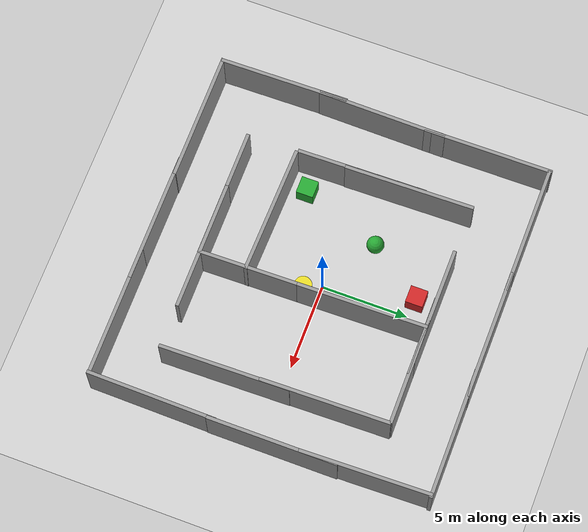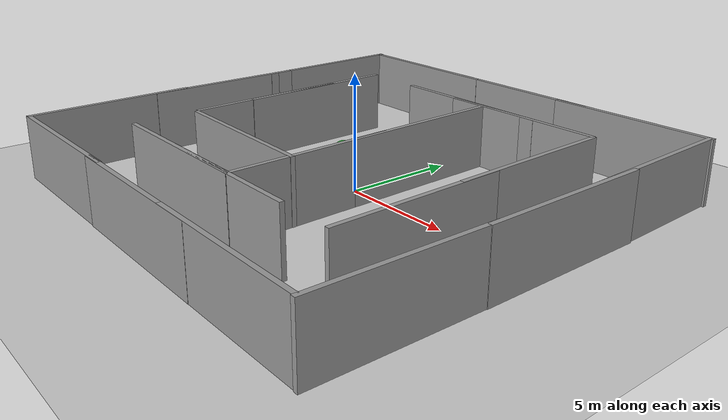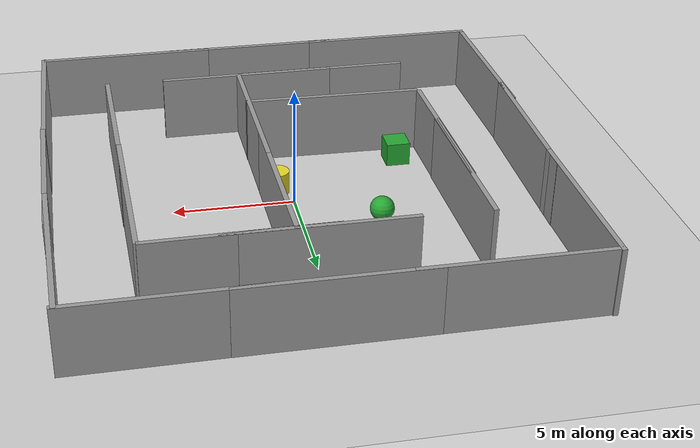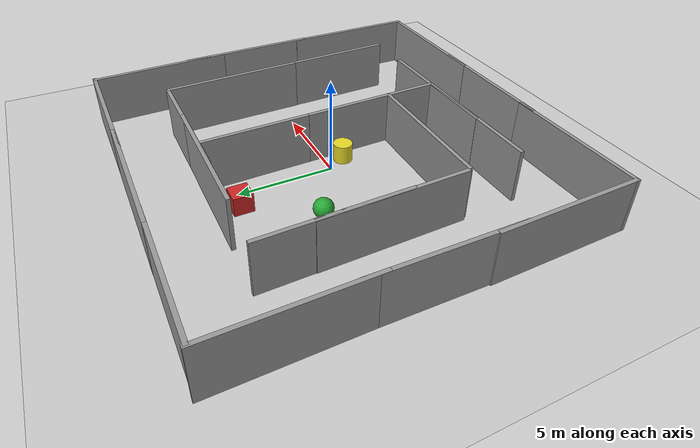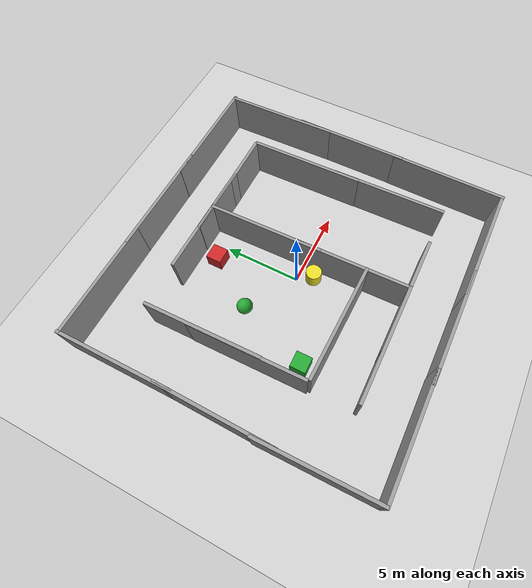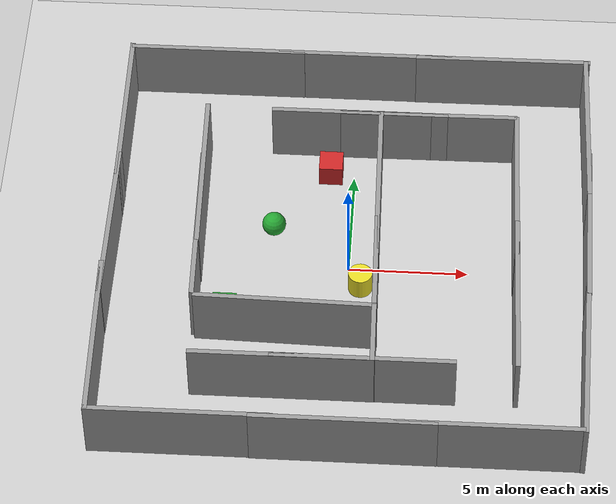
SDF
<sdf version="1.6">
 <world name="default">
  <model name="ground_plane">
   <static>1</static>
   <link name="link">
    <collision name="collision">
     <geometry><plane><normal>0 0 1</normal><size>100 100</size></plane></geometry>
     <surface><friction><ode><mu>100</mu><mu2>50</mu2></ode></friction></surface>
    </collision>
    <visual name="visual">
     <cast_shadows>0</cast_shadows>
     <geometry><plane><normal>0 0 1</normal><size>100 100</size></plane></geometry>
     <material>
      <script><uri>file://media/materials/scripts/gazebo.material</uri><name>Gazebo/Grey</name></script>
     </material>
    </visual>
    <velocity_decay><linear>0</linear><angular>0</angular></velocity_decay>
   </link>
  </model>
  <model name="grey_wall">
   <static>1</static>
   <link name="link">
    <pose>0 0 1.4 0 -0 0</pose>
    <collision name="collision"><geometry><box><size>7.5 0.2 2.8</size></box></geometry></collision>
    <visual name="visual">
     <cast_shadows>0</cast_shadows>
     <geometry><box><size>7.5 0.2 2.8</size></box></geometry>
     <material>
      <script>
       <uri>model://grey_wall/materials/scripts</uri>
       <uri>model://grey_wall/materials/textures</uri>
       <name>vrc/grey_wall</name>
      </script>
     </material>
    </visual>
    <velocity_decay><linear>0</linear><angular>0</angular></velocity_decay>
   </link>
   <pose>-6.15914 9.7448 0 0 -0 0</pose>
  </model>
  <model name="grey_wall_0">
   <static>1</static>
   <link name="link">
    <pose>0 0 1.4 0 -0 0</pose>
    <collision name="collision"><geometry><box><size>7.5 0.2 2.8</size></box></geometry></collision>
    <visual name="visual">
     <cast_shadows>0</cast_shadows>
     <geometry><box><size>7.5 0.2 2.8</size></box></geometry>
     <material>
      <script>
       <uri>model://grey_wall/materials/scripts</uri>
       <uri>model://grey_wall/materials/textures</uri>
       <name>vrc/grey_wall</name>
      </script>
     </material>
    </visual>
    <velocity_decay><linear>0</linear><angular>0</angular></velocity_decay>
   </link>
   <pose>-6.21165 -9.703 0 0 -0 0</pose>
  </model>
  <model name="grey_wall_1">
   <static>1</static>
   <link name="link">
    <pose>0 0 1.4 0 -0 0</pose>
    <collision name="collision"><geometry><box><size>7.5 0.2 2.8</size></box></geometry></collision>
    <visual name="visual">
     <cast_shadows>0</cast_shadows>
     <geometry><box><size>7.5 0.2 2.8</size></box></geometry>
     <material>
      <script>
       <uri>model://grey_wall/materials/scripts</uri>
       <uri>model://grey_wall/materials/textures</uri>
       <name>vrc/grey_wall</name>
      </script>
     </material>
    </visual>
    <velocity_decay><linear>0</linear><angular>0</angular></velocity_decay>
   </link>
   <pose>-9.91604 -6.01841 0 0 0 -1.55564</pose>
  </model>
  <model name="grey_wall_2">
   <static>1</static>
   <link name="link">
    <pose>0 0 1.4 0 -0 0</pose>
    <collision name="collision"><geometry><box><size>7.5 0.2 2.8</size></box></geometry></collision>
    <visual name="visual">
     <cast_shadows>0</cast_shadows>
     <geometry><box><size>7.5 0.2 2.8</size></box></geometry>
     <material>
      <script>
       <uri>model://grey_wall/materials/scripts</uri>
       <uri>model://grey_wall/materials/textures</uri>
       <name>vrc/grey_wall</name>
      </script>
     </material>
    </visual>
    <velocity_decay><linear>0</linear><angular>0</angular></velocity_decay>
   </link>
   <pose>-2.36047 -6.71034 0 0 -0 0</pose>
  </model>
  <model name="grey_wall_3">
   <static>1</static>
   <link name="link">
    <pose>0 0 1.4 0 -0 0</pose>
    <collision name="collision"><geometry><box><size>7.5 0.2 2.8</size></box></geometry></collision>
    <visual name="visual">
     <cast_shadows>0</cast_shadows>
     <geometry><box><size>7.5 0.2 2.8</size></box></geometry>
     <material>
      <script>
       <uri>model://grey_wall/materials/scripts</uri>
       <uri>model://grey_wall/materials/textures</uri>
       <name>vrc/grey_wall</name>
      </script>
     </material>
    </visual>
    <velocity_decay><linear>0</linear><angular>0</angular></velocity_decay>
   </link>
   <pose>9.84269 6.09226 0.00212 0 0 -1.54587</pose>
  </model>
  <model name="grey_wall_4">
   <static>1</static>
   <link name="link">
    <pose>0 0 1.4 0 -0 0</pose>
    <collision name="collision"><geometry><box><size>7.5 0.2 2.8</size></box></geometry></collision>
    <visual name="visual">
     <cast_shadows>0</cast_shadows>
     <geometry><box><size>7.5 0.2 2.8</size></box></geometry>
     <material>
      <script>
       <uri>model://grey_wall/materials/scripts</uri>
       <uri>model://grey_wall/materials/textures</uri>
       <name>vrc/grey_wall</name>
      </script>
     </material>
    </visual>
    <velocity_decay><linear>0</linear><angular>0</angular></velocity_decay>
   </link>
   <pose>6.04797 -9.73342 0 0 -0 0</pose>
  </model>
  <model name="grey_wall_5">
   <static>1</static>
   <link name="link">
    <pose>0 0 1.4 0 -0 0</pose>
    <collision name="collision"><geometry><box><size>7.5 0.2 2.8</size></box></geometry></collision>
    <visual name="visual">
     <cast_shadows>0</cast_shadows>
     <geometry><box><size>7.5 0.2 2.8</size></box></geometry>
     <material>
      <script>
       <uri>model://grey_wall/materials/scripts</uri>
       <uri>model://grey_wall/materials/textures</uri>
       <name>vrc/grey_wall</name>
      </script>
     </material>
    </visual>
    <velocity_decay><linear>0</linear><angular>0</angular></velocity_decay>
   </link>
   <pose>-6.24263 -0.010871 0 0 -0 1.58991</pose>
  </model>
  <model name="grey_wall_6">
   <static>1</static>
   <link name="link">
    <pose>0 0 1.4 0 -0 0</pose>
    <collision name="collision"><geometry><box><size>7.5 0.2 2.8</size></box></geometry></collision>
    <visual name="visual">
     <cast_shadows>0</cast_shadows>
     <geometry><box><size>7.5 0.2 2.8</size></box></geometry>
     <material>
      <script>
       <uri>model://grey_wall/materials/scripts</uri>
       <uri>model://grey_wall/materials/textures</uri>
       <name>vrc/grey_wall</name>
      </script>
     </material>
    </visual>
    <velocity_decay><linear>0</linear><angular>0</angular></velocity_decay>
   </link>
   <pose>0.235191 9.75265 0 0 -0 0</pose>
  </model>
  <model name="grey_wall_1_clone">
   <static>1</static>
   <link name="link">
    <pose>0 0 1.4 0 -0 0</pose>
    <collision name="collision"><geometry><box><size>7.5 0.2 2.8</size></box></geometry></collision>
    <visual name="visual">
     <cast_shadows>0</cast_shadows>
     <geometry><box><size>7.5 0.2 2.8</size></box></geometry>
     <material>
      <script>
       <uri>model://grey_wall/materials/scripts</uri>
       <uri>model://grey_wall/materials/textures</uri>
       <name>vrc/grey_wall</name>
      </script>
     </material>
    </visual>
    <velocity_decay><linear>0</linear><angular>0</angular></velocity_decay>
   </link>
   <pose>-9.88284 -0.130124 0 0 0 -1.58359</pose>
  </model>
  <model name="grey_wall_3_clone">
   <static>1</static>
   <link name="link">
    <pose>0 0 1.4 0 -0 0</pose>
    <collision name="collision"><geometry><box><size>7.5 0.2 2.8</size></box></geometry></collision>
    <visual name="visual">
     <cast_shadows>0</cast_shadows>
     <geometry><box><size>7.5 0.2 2.8</size></box></geometry>
     <material>
      <script>
       <uri>model://grey_wall/materials/scripts</uri>
       <uri>model://grey_wall/materials/textures</uri>
       <name>vrc/grey_wall</name>
      </script>
     </material>
    </visual>
    <velocity_decay><linear>0</linear><angular>0</angular></velocity_decay>
   </link>
   <pose>9.93687 0.821066 0.00212 0 0 -1.57102</pose>
  </model>
  <model name="grey_wall_1_clone_clone">
   <static>1</static>
   <link name="link">
    <pose>0 0 1.4 0 -0 0</pose>
    <collision name="collision"><geometry><box><size>7.5 0.2 2.8</size></box></geometry></collision>
    <visual name="visual">
     <cast_shadows>0</cast_shadows>
     <geometry><box><size>7.5 0.2 2.8</size></box></geometry>
     <material>
      <script>
       <uri>model://grey_wall/materials/scripts</uri>
       <uri>model://grey_wall/materials/textures</uri>
       <name>vrc/grey_wall</name>
      </script>
     </material>
    </visual>
    <velocity_decay><linear>0</linear><angular>0</angular></velocity_decay>
   </link>
   <pose>-9.8631 6.14852 0 0 0 -1.56529</pose>
  </model>
  <model name="grey_wall_1_clone_clone_0">
   <static>1</static>
   <link name="link">
    <pose>0 0 1.4 0 -0 0</pose>
    <collision name="collision"><geometry><box><size>7.5 0.2 2.8</size></box></geometry></collision>
    <visual name="visual">
     <cast_shadows>0</cast_shadows>
     <geometry><box><size>7.5 0.2 2.8</size></box></geometry>
     <material>
      <script>
       <uri>model://grey_wall/materials/scripts</uri>
       <uri>model://grey_wall/materials/textures</uri>
       <name>vrc/grey_wall</name>
      </script>
     </material>
    </visual>
    <velocity_decay><linear>0</linear><angular>0</angular></velocity_decay>
   </link>
   <pose>6.18211 9.75952 0 0 0 -3.13624</pose>
  </model>
  <model name="grey_wall_1_clone_clone_1">
   <static>1</static>
   <link name="link">
    <pose>0 0 1.4 0 -0 0</pose>
    <collision name="collision"><geometry><box><size>7.5 0.2 2.8</size></box></geometry></collision>
    <visual name="visual">
     <cast_shadows>0</cast_shadows>
     <geometry><box><size>7.5 0.2 2.8</size></box></geometry>
     <material>
      <script>
       <uri>model://grey_wall/materials/scripts</uri>
       <uri>model://grey_wall/materials/textures</uri>
       <name>vrc/grey_wall</name>
      </script>
     </material>
    </visual>
    <velocity_decay><linear>0</linear><angular>0</angular></velocity_decay>
   </link>
   <pose>9.86952 -6.11438 0 0 0 -1.58359</pose>
  </model>
  <model name="grey_wall_1_clone_clone_2">
   <static>1</static>
   <link name="link">
    <pose>0 0 1.4 0 -0 0</pose>
    <collision name="collision"><geometry><box><size>7.5 0.2 2.8</size></box></geometry></collision>
    <visual name="visual">
     <cast_shadows>0</cast_shadows>
     <geometry><box><size>7.5 0.2 2.8</size></box></geometry>
     <material>
      <script>
       <uri>model://grey_wall/materials/scripts</uri>
       <uri>model://grey_wall/materials/textures</uri>
       <name>vrc/grey_wall</name>
      </script>
     </material>
    </visual>
    <velocity_decay><linear>0</linear><angular>0</angular></velocity_decay>
   </link>
   <pose>0.291242 -9.73574 -0 0 -0 3.14045</pose>
  </model>
  <model name="grey_wall_2_clone">
   <static>1</static>
   <link name="link">
    <pose>0 0 1.4 0 -0 0</pose>
    <collision name="collision"><geometry><box><size>7.5 0.2 2.8</size></box></geometry></collision>
    <visual name="visual">
     <cast_shadows>0</cast_shadows>
     <geometry><box><size>7.5 0.2 2.8</size></box></geometry>
     <material>
      <script>
       <uri>model://grey_wall/materials/scripts</uri>
       <uri>model://grey_wall/materials/textures</uri>
       <name>vrc/grey_wall</name>
      </script>
     </material>
    </visual>
    <velocity_decay><linear>0</linear><angular>0</angular></velocity_decay>
   </link>
   <pose>0.159837 6.38955 0 0 -0 0</pose>
  </model>
  <model name="grey_wall_5_clone">
   <static>1</static>
   <link name="link">
    <pose>0 0 1.4 0 -0 0</pose>
    <collision name="collision"><geometry><box><size>7.5 0.2 2.8</size></box></geometry></collision>
    <visual name="visual">
     <cast_shadows>0</cast_shadows>
     <geometry><box><size>7.5 0.2 2.8</size></box></geometry>
     <material>
      <script>
       <uri>model://grey_wall/materials/scripts</uri>
       <uri>model://grey_wall/materials/textures</uri>
       <name>vrc/grey_wall</name>
      </script>
     </material>
    </visual>
    <velocity_decay><linear>0</linear><angular>0</angular></velocity_decay>
   </link>
   <pose>-6.2665 2.77185 0 0 -0 1.58991</pose>
  </model>
  <model name="grey_wall_5_clone_0">
   <static>1</static>
   <link name="link">
    <pose>0 0 1.4 0 -0 0</pose>
    <collision name="collision"><geometry><box><size>7.5 0.2 2.8</size></box></geometry></collision>
    <visual name="visual">
     <cast_shadows>0</cast_shadows>
     <geometry><box><size>7.5 0.2 2.8</size></box></geometry>
     <material>
      <script>
       <uri>model://grey_wall/materials/scripts</uri>
       <uri>model://grey_wall/materials/textures</uri>
       <name>vrc/grey_wall</name>
      </script>
     </material>
    </visual>
    <velocity_decay><linear>0</linear><angular>0</angular></velocity_decay>
   </link>
   <pose>1.23701 -3.05596 0 0 -0 1.58991</pose>
  </model>
  <model name="grey_wall_5_clone_1">
   <static>1</static>
   <link name="link">
    <pose>0 0 1.4 0 -0 0</pose>
    <collision name="collision"><geometry><box><size>7.5 0.2 2.8</size></box></geometry></collision>
    <visual name="visual">
     <cast_shadows>0</cast_shadows>
     <geometry><box><size>7.5 0.2 2.8</size></box></geometry>
     <material>
      <script>
       <uri>model://grey_wall/materials/scripts</uri>
       <uri>model://grey_wall/materials/textures</uri>
       <name>vrc/grey_wall</name>
      </script>
     </material>
    </visual>
    <velocity_decay><linear>0</linear><angular>0</angular></velocity_decay>
   </link>
   <pose>-2.37707 -3.91438 0 0 0 -0.023142</pose>
  </model>
  <model name="grey_wall_5_clone_2">
   <static>1</static>
   <link name="link">
    <pose>0 0 1.4 0 -0 0</pose>
    <collision name="collision"><geometry><box><size>7.5 0.2 2.8</size></box></geometry></collision>
    <visual name="visual">
     <cast_shadows>0</cast_shadows>
     <geometry><box><size>7.5 0.2 2.8</size></box></geometry>
     <material>
      <script>
       <uri>model://grey_wall/materials/scripts</uri>
       <uri>model://grey_wall/materials/textures</uri>
       <name>vrc/grey_wall</name>
      </script>
     </material>
    </visual>
    <velocity_decay><linear>0</linear><angular>0</angular></velocity_decay>
   </link>
   <pose>6.90049 2.70601 0 0 -0 1.58991</pose>
  </model>
  <model name="grey_wall_5_clone_3">
   <static>1</static>
   <link name="link">
    <pose>0 0 1.4 0 -0 0</pose>
    <collision name="collision"><geometry><box><size>7.5 0.2 2.8</size></box></geometry></collision>
    <visual name="visual">
     <cast_shadows>0</cast_shadows>
     <geometry><box><size>7.5 0.2 2.8</size></box></geometry>
     <material>
      <script>
       <uri>model://grey_wall/materials/scripts</uri>
       <uri>model://grey_wall/materials/textures</uri>
       <name>vrc/grey_wall</name>
      </script>
     </material>
    </visual>
    <velocity_decay><linear>0</linear><angular>0</angular></velocity_decay>
   </link>
   <pose>3.08317 6.38861 0 0 -0 0.007398</pose>
  </model>
  <model name="grey_wall_5_clone_4">
   <static>1</static>
   <link name="link">
    <pose>0 0 1.4 0 -0 0</pose>
    <collision name="collision"><geometry><box><size>7.5 0.2 2.8</size></box></geometry></collision>
    <visual name="visual">
     <cast_shadows>0</cast_shadows>
     <geometry><box><size>7.5 0.2 2.8</size></box></geometry>
     <material>
      <script>
       <uri>model://grey_wall/materials/scripts</uri>
       <uri>model://grey_wall/materials/textures</uri>
       <name>vrc/grey_wall</name>
      </script>
     </material>
    </visual>
    <velocity_decay><linear>0</linear><angular>0</angular></velocity_decay>
   </link>
   <pose>1.13091 2.7068 0 0 -0 1.58991</pose>
  </model>
  <model name="grey_wall_5_clone_2_clone">
   <static>1</static>
   <link name="link">
    <pose>0 0 1.4 0 -0 0</pose>
    <collision name="collision"><geometry><box><size>7.5 0.2 2.8</size></box></geometry></collision>
    <visual name="visual">
     <cast_shadows>0</cast_shadows>
     <geometry><box><size>7.5 0.2 2.8</size></box></geometry>
     <material>
      <script>
       <uri>model://grey_wall/materials/scripts</uri>
       <uri>model://grey_wall/materials/textures</uri>
       <name>vrc/grey_wall</name>
      </script>
     </material>
    </visual>
    <velocity_decay><linear>0</linear><angular>0</angular></velocity_decay>
   </link>
   <pose>7.03149 -3.03185 0 0 -0 1.58991</pose>
  </model>
  <model name="grey_wall_2_clone_0">
   <static>1</static>
   <link name="link">
    <pose>0 0 1.4 0 -0 0</pose>
    <collision name="collision"><geometry><box><size>7.5 0.2 2.8</size></box></geometry></collision>
    <visual name="visual">
     <cast_shadows>0</cast_shadows>
     <geometry><box><size>7.5 0.2 2.8</size></box></geometry>
     <material>
      <script>
       <uri>model://grey_wall/materials/scripts</uri>
       <uri>model://grey_wall/materials/textures</uri>
       <name>vrc/grey_wall</name>
      </script>
     </material>
    </visual>
    <velocity_decay><linear>0</linear><angular>0</angular></velocity_decay>
   </link>
   <pose>0.9218 -6.69941 0 0 -0 0</pose>
  </model>
  <model name="unit_cylinder_yellow">
   <link name="link">
    <inertial>
     <mass>1</mass>
     <inertia><ixx>0.145833</ixx><ixy>0</ixy><ixz>0</ixz><iyy>0.145833</iyy><iyz>0</iyz><izz>0.125</izz></inertia>
    </inertial>
    <visual name="visual">
     <geometry><cylinder><radius>0.5</radius><length>1</length></cylinder></geometry>
     <material>
      <script><name>Gazebo/Yellow</name><uri>file://media/materials/scripts/gazebo.material</uri></script>
      <shader type="vertex"><normal_map>__default__</normal_map></shader>
      <ambient>1 1 0 1</ambient>
      <diffuse>1 1 0 1</diffuse>
      <emissive>0 0 0 1</emissive>
     </material>
    </visual>
    <collision name="collision">
     <geometry><cylinder><radius>0.5</radius><length>1</length></cylinder></geometry>
     <surface>
      <friction>
       <ode><mu>1</mu><mu2>1</mu2><fdir1>0 0 0</fdir1><slip1>0</slip1><slip2>0</slip2></ode>
       <torsional>
        <coefficient>1</coefficient>
        <patch_radius>0</patch_radius>
        <surface_radius>0</surface_radius>
        <use_patch_radius>1</use_patch_radius>
        <ode><slip>0</slip></ode>
       </torsional>
      </friction>
      <bounce><restitution_coefficient>0</restitution_coefficient><threshold>1e+06</threshold></bounce>
      <contact>
       <collide_without_contact>0</collide_without_contact>
       <collide_without_contact_bitmask>1</collide_without_contact_bitmask>
       <collide_bitmask>1</collide_bitmask>
       <ode>
        <soft_cfm>0</soft_cfm>
        <soft_erp>0.2</soft_erp>
        <kp>1e+13</kp>
        <kd>1</kd>
        <max_vel>0.01</max_vel>
        <min_depth>0</min_depth>
       </ode>
       <bullet>
        <split_impulse>1</split_impulse>
        <split_impulse_penetration_threshold>-0.01</split_impulse_penetration_threshold>
        <soft_cfm>0</soft_cfm>
        <soft_erp>0.2</soft_erp>
        <kp>1e+13</kp>
        <kd>1</kd>
       </bullet>
      </contact>
     </surface>
    </collision>
   </link>
   <static>0</static>
   <pose>0.548809 -0.951113 0.5 0 -0 0</pose>
  </model>
  <model name="unit_sphere_green">
   <link name="link">
    <inertial>
     <mass>1</mass>
     <inertia><ixx>0.1</ixx><ixy>0</ixy><ixz>0</ixz><iyy>0.1</iyy><iyz>0</iyz><izz>0.1</izz></inertia>
    </inertial>
    <visual name="visual">
     <geometry><sphere><radius>0.5</radius></sphere></geometry>
     <material>
      <script><name>Gazebo/Green</name><uri>file://media/materials/scripts/gazebo.material</uri></script>
      <shader type="vertex"><normal_map>__default__</normal_map></shader>
      <ambient>0 1 0 1</ambient>
      <diffuse>0 1 0 1</diffuse>
      <specular>0.1 0.1 0.1 1</specular>
      <emissive>0 0 0 1</emissive>
     </material>
    </visual>
    <collision name="collision">
     <geometry><sphere><radius>0.5</radius></sphere></geometry>
     <surface>
      <friction>
       <ode><mu>1</mu><mu2>1</mu2><fdir1>0 0 0</fdir1><slip1>0</slip1><slip2>0</slip2></ode>
       <torsional>
        <coefficient>1</coefficient>
        <patch_radius>0</patch_radius>
        <surface_radius>0</surface_radius>
        <use_patch_radius>1</use_patch_radius>
        <ode><slip>0</slip></ode>
       </torsional>
      </friction>
      <bounce><restitution_coefficient>0</restitution_coefficient><threshold>1e+06</threshold></bounce>
      <contact>
       <collide_without_contact>0</collide_without_contact>
       <collide_without_contact_bitmask>1</collide_without_contact_bitmask>
       <collide_bitmask>1</collide_bitmask>
       <ode>
        <soft_cfm>0</soft_cfm>
        <soft_erp>0.2</soft_erp>
        <kp>1e+13</kp>
        <kd>1</kd>
        <max_vel>0.01</max_vel>
        <min_depth>0</min_depth>
       </ode>
       <bullet>
        <split_impulse>1</split_impulse>
        <split_impulse_penetration_threshold>-0.01</split_impulse_penetration_threshold>
        <soft_cfm>0</soft_cfm>
        <soft_erp>0.2</soft_erp>
        <kp>1e+13</kp>
        <kd>1</kd>
       </bullet>
      </contact>
     </surface>
    </collision>
   </link>
   <static>0</static>
   <pose>-3.23686 1.93925 0.5 0 -0 0</pose>
  </model>
  <model name="unit_box_red">
   <link name="link">
    <inertial>
     <mass>1</mass>
     <inertia>
      <ixx>0.166667</ixx>
      <ixy>0</ixy>
      <ixz>0</ixz>
      <iyy>0.166667</iyy>
      <iyz>0</iyz>
      <izz>0.166667</izz>
     </inertia>
    </inertial>
    <visual name="visual">
     <geometry><box><size>1 1 1</size></box></geometry>
     <material>
      <script><name>Gazebo/Red</name><uri>file://media/materials/scripts/gazebo.material</uri></script>
      <shader type="vertex"><normal_map>__default__</normal_map></shader>
      <ambient>1 0 0 1</ambient>
      <diffuse>1 0 0 1</diffuse>
      <specular>0.1 0.1 0.1 1</specular>
      <emissive>0 0 0 1</emissive>
     </material>
    </visual>
    <collision name="collision">
     <geometry><box><size>1 1 1</size></box></geometry>
     <surface>
      <friction>
       <ode><mu>1</mu><mu2>1</mu2><fdir1>0 0 0</fdir1><slip1>0</slip1><slip2>0</slip2></ode>
       <torsional>
        <coefficient>1</coefficient>
        <patch_radius>0</patch_radius>
        <surface_radius>0</surface_radius>
        <use_patch_radius>1</use_patch_radius>
        <ode><slip>0</slip></ode>
       </torsional>
      </friction>
      <bounce><restitution_coefficient>0</restitution_coefficient><threshold>1e+06</threshold></bounce>
      <contact>
       <collide_without_contact>0</collide_without_contact>
       <collide_without_contact_bitmask>1</collide_without_contact_bitmask>
       <collide_bitmask>1</collide_bitmask>
       <ode>
        <soft_cfm>0</soft_cfm>
        <soft_erp>0.2</soft_erp>
        <kp>1e+13</kp>
        <kd>1</kd>
        <max_vel>0.01</max_vel>
        <min_depth>0</min_depth>
       </ode>
       <bullet>
        <split_impulse>1</split_impulse>
        <split_impulse_penetration_threshold>-0.01</split_impulse_penetration_threshold>
        <soft_cfm>0</soft_cfm>
        <soft_erp>0.2</soft_erp>
        <kp>1e+13</kp>
        <kd>1</kd>
       </bullet>
      </contact>
     </surface>
    </collision>
   </link>
   <static>0</static>
   <pose>-1.00051 5.16876 0.5 0 -0 0</pose>
  </model>
  <model name="unit_box_green">
   <link name="link">
    <inertial>
     <mass>1</mass>
     <inertia>
      <ixx>0.166667</ixx>
      <ixy>0</ixy>
      <ixz>0</ixz>
      <iyy>0.166667</iyy>
      <iyz>0</iyz>
      <izz>0.166667</izz>
     </inertia>
    </inertial>
    <visual name="visual">
     <geometry><box><size>1 1 1</size></box></geometry>
     <material>
      <script><name>Gazebo/Green</name><uri>file://media/materials/scripts/gazebo.material</uri></script>
      <shader type="vertex"><normal_map>__default__</normal_map></shader>
      <ambient>0 1 0 1</ambient>
      <diffuse>0 1 0 1</diffuse>
      <specular>0.1 0.1 0.1 1</specular>
      <emissive>0 0 0 1</emissive>
     </material>
    </visual>
    <collision name="collision">
     <geometry><box><size>1 1 1</size></box></geometry>
     <surface>
      <friction>
       <ode><mu>1</mu><mu2>1</mu2><fdir1>0 0 0</fdir1><slip1>0</slip1><slip2>0</slip2></ode>
       <torsional>
        <coefficient>1</coefficient>
        <patch_radius>0</patch_radius>
        <surface_radius>0</surface_radius>
        <use_patch_radius>1</use_patch_radius>
        <ode><slip>0</slip></ode>
       </torsional>
      </friction>
      <bounce><restitution_coefficient>0</restitution_coefficient><threshold>1e+06</threshold></bounce>
      <contact>
       <collide_without_contact>0</collide_without_contact>
       <collide_without_contact_bitmask>1</collide_without_contact_bitmask>
       <collide_bitmask>1</collide_bitmask>
       <ode>
        <soft_cfm>0</soft_cfm>
        <soft_erp>0.2</soft_erp>
        <kp>1e+13</kp>
        <kd>1</kd>
        <max_vel>0.01</max_vel>
        <min_depth>0</min_depth>
       </ode>
       <bullet>
        <split_impulse>1</split_impulse>
        <split_impulse_penetration_threshold>-0.01</split_impulse_penetration_threshold>
        <soft_cfm>0</soft_cfm>
        <soft_erp>0.2</soft_erp>
        <kp>1e+13</kp>
        <kd>1</kd>
       </bullet>
      </contact>
     </surface>
    </collision>
   </link>
   <static>0</static>
   <pose>-4.97985 -2.7736 0.5 0 -0 0</pose>
  </model>
 </world>
</sdf>
